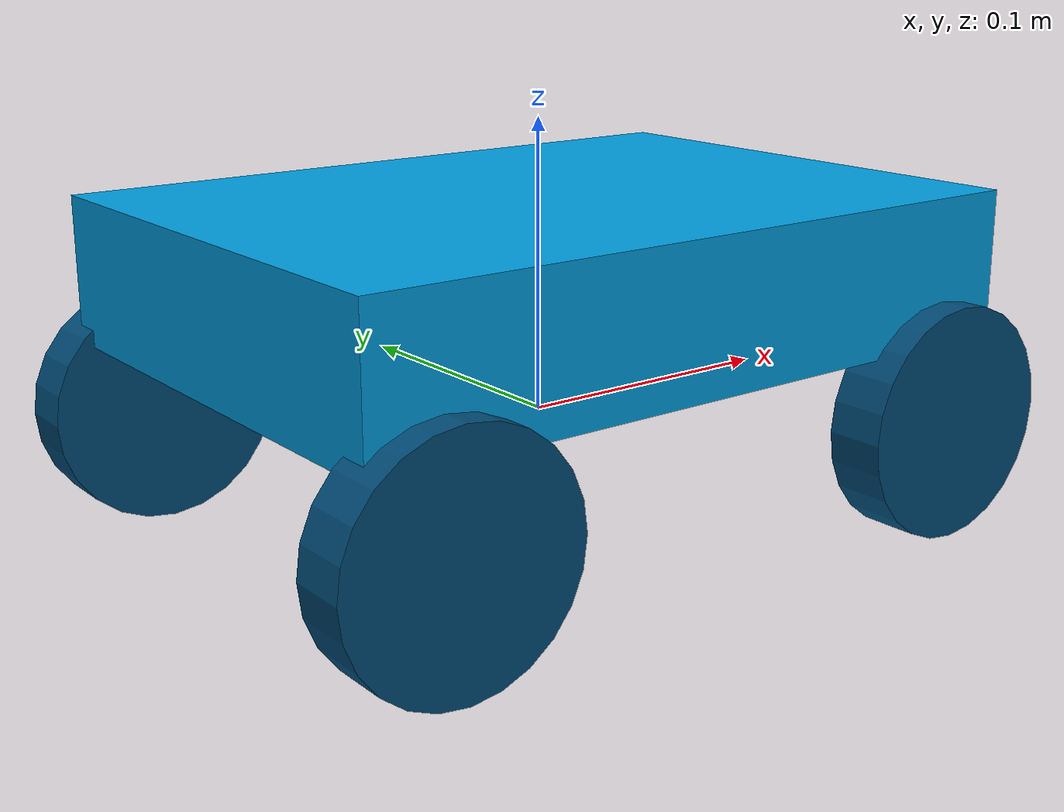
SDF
<?xml version="1.0"?>
<sdf version="1.9">
  <model name="omni_like_robot" canonical_link="chassis">
    <pose>0 0 0 0 0 0</pose>

    <!-- CHASSIS -->
    <link name="chassis">
      <pose>0 0 0.05 0 0 0</pose>
      <inertial>
        <mass>1.0</mass>
        <inertia>
          <ixx>0.0012</ixx>
          <iyy>0.0040</iyy>
          <izz>0.0048</izz>
        </inertia>
      </inertial>
      <visual name="chassis_visual">
        <geometry>
          <box><size>0.25 0.18 0.05</size></box>
        </geometry>
        <material>
          <ambient>0.0 0.612 0.867 1</ambient>
          <diffuse>0.0 0.612 0.867 1</diffuse>
        </material>
      </visual>
      <collision name="chassis_collision">
        <geometry>
          <box><size>0.25 0.18 0.05</size></box>
        </geometry>
      </collision>
    </link>

    <!-- WHEELS -->

    <!-- FRONT LEFT -->
    <link name="front_left_wheel">
      <pose>0.1 0.09 0 -1.5707 0 0</pose>
      <inertial><mass>0.2</mass></inertial>
      <visual name="visual">
        <geometry><cylinder><radius>0.04</radius><length>0.02</length></cylinder></geometry>
        <material><ambient>0.0 0.29 0.46 1</ambient></material>
      </visual>
      <collision name="collision">
        <geometry><cylinder><radius>0.04</radius><length>0.02</length></cylinder></geometry>
      </collision>
    </link>

    <!-- FRONT RIGHT -->
    <link name="front_right_wheel">
      <pose>0.1 -0.09 0 -1.5707 0 0</pose>
      <inertial><mass>0.2</mass></inertial>
      <visual name="visual">
        <geometry><cylinder><radius>0.04</radius><length>0.02</length></cylinder></geometry>
        <material><ambient>0.0 0.29 0.46 1</ambient></material>
      </visual>
      <collision name="collision">
        <geometry><cylinder><radius>0.04</radius><length>0.02</length></cylinder></geometry>
      </collision>
    </link>

    <!-- REAR LEFT -->
    <link name="rear_left_wheel">
      <pose>-0.1 0.09 0 -1.5707 0 0</pose>
      <inertial><mass>0.2</mass></inertial>
      <visual name="visual">
        <geometry><cylinder><radius>0.04</radius><length>0.02</length></cylinder></geometry>
        <material><ambient>0.0 0.29 0.46 1</ambient></material>
      </visual>
      <collision name="collision">
        <geometry><cylinder><radius>0.04</radius><length>0.02</length></cylinder></geometry>
      </collision>
    </link>

    <!-- REAR RIGHT -->
    <link name="rear_right_wheel">
      <pose>-0.1 -0.09 0 -1.5707 0 0</pose>
      <inertial><mass>0.2</mass></inertial>
      <visual name="visual">
        <geometry><cylinder><radius>0.04</radius><length>0.02</length></cylinder></geometry>
        <material><ambient>0.0 0.29 0.46 1</ambient></material>
      </visual>
      <collision name="collision">
        <geometry><cylinder><radius>0.04</radius><length>0.02</length></cylinder></geometry>
      </collision>
    </link>

    <!-- JOINTS -->

    <joint name="front_left_wheel_joint" type="revolute">
      <parent>chassis</parent>
      <child>front_left_wheel</child>
      <axis><xyz>0 1 0</xyz></axis>
    </joint>

    <joint name="front_right_wheel_joint" type="revolute">
      <parent>chassis</parent>
      <child>front_right_wheel</child>
      <axis><xyz>0 1 0</xyz></axis>
    </joint>

    <joint name="rear_left_wheel_joint" type="revolute">
      <parent>chassis</parent>
      <child>rear_left_wheel</child>
      <axis><xyz>0 1 0</xyz></axis>
    </joint>

    <joint name="rear_right_wheel_joint" type="revolute">
      <parent>chassis</parent>
      <child>rear_right_wheel</child>
      <axis><xyz>0 1 0</xyz></axis>
    </joint>

    <!-- JOINT VELOCITY CONTROLLERS -->

    <!-- FRONT LEFT -->
    <plugin name="ignition::gazebo::systems::JointController"
            filename="libignition-gazebo-joint-controller-system.so">
      <joint_name>front_left_wheel_joint</joint_name>
      <command_type>velocity</command_type>
      <topic>/omni/front_left_speed</topic>
    </plugin>

    <!-- FRONT RIGHT -->
    <plugin name="ignition::gazebo::systems::JointController"
            filename="libignition-gazebo-joint-controller-system.so">
      <joint_name>front_right_wheel_joint</joint_name>
      <command_type>velocity</command_type>
      <topic>/omni/front_right_speed</topic>
    </plugin>

    <!-- REAR LEFT -->
    <plugin name="ignition::gazebo::systems::JointController"
            filename="libignition-gazebo-joint-controller-system.so">
      <joint_name>rear_left_wheel_joint</joint_name>
      <command_type>velocity</command_type>
      <topic>/omni/rear_left_speed</topic>
    </plugin>

    <!-- REAR RIGHT -->
    <plugin name="ignition::gazebo::systems::JointController"
            filename="libignition-gazebo-joint-controller-system.so">
      <joint_name>rear_right_wheel_joint</joint_name>
      <command_type>velocity</command_type>
      <topic>/omni/rear_right_speed</topic>
    </plugin>

  </model>
</sdf>
